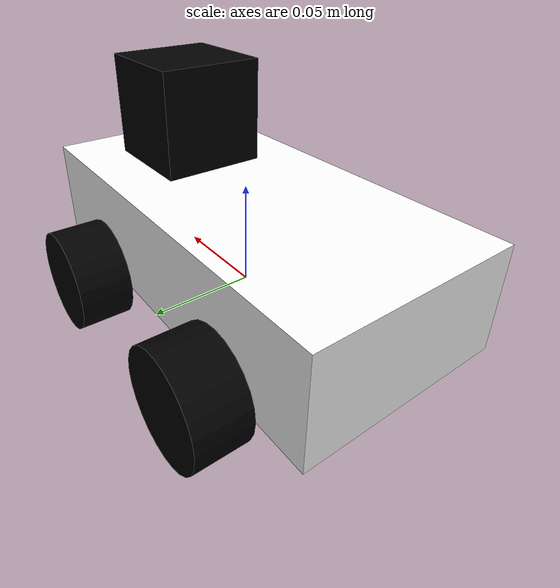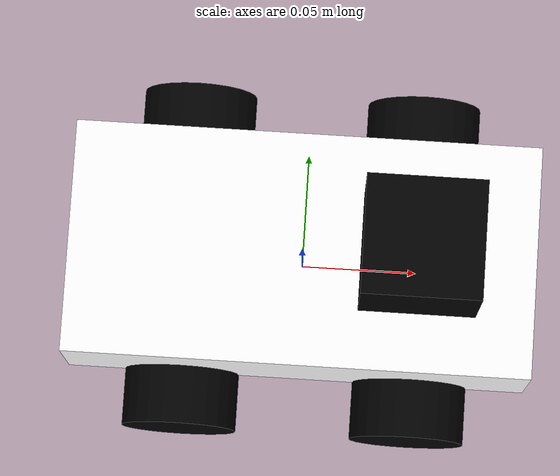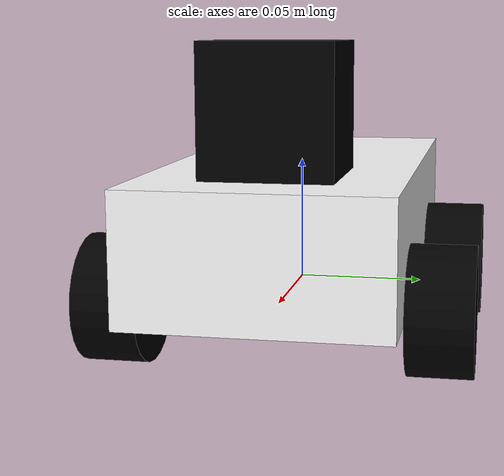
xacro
<?xml version="1.0"?>
<robot xmlns:xacro="http://www.ros.org/wiki/xacro" name="vechile">
<xacro:property name="body_x" value="0.2" />
<xacro:property name="body_y" value="0.1" />
<xacro:property name="body_z" value="0.05" />
<xacro:property name="wheel_r" value="0.025" />
<xacro:property name="wheel_l" value="0.025" />
<xacro:property name="body_mass" value="0.5" />
<xacro:property name="wheel_mass" value="0.05" />
<xacro:property name="pi" value="3.1415926"/>
<xacro:property name="camera_a" value="0.05"/>
<xacro:property name="camera_mass" value="0.05" />
<xacro:property name="camera_name" value="camera" />

<material name="black">
    <color rgba="0 0 0 1"/>
</material>

<material name="white">
    <color rgba="1 1 1 1"/>
</material>
<link name="base_link">
    <visual>
        <geometry>
            <box size="${body_x} ${body_y} ${body_z}"/>
        </geometry>
        <material name="white"/>
        <origin xyz="0 0 ${body_z/2}"/>
    </visual>
    <collision>
        <geometry>
            <box size="${body_x} ${body_y} ${body_z}"/>
        </geometry>
        <origin xyz="0 0 ${body_z/2}"/>
    </collision>
    <inertial>
        <mass value="${body_mass}" />
        <inertia ixx="${body_mass/12*(body_y*body_y+body_z*body_z)}"
        iyy="${body_mass/12*(body_x*body_x+body_z*body_z)}"
        izz="${body_mass/12*(body_y*body_y+body_x*body_x)}"
        ixy="0.0" ixz="0.0" iyz="0.0"/>
    </inertial>
</link>
<xacro:macro name="wheel" params="prefix">
    <link name="${prefix}_wheel">
        <visual>
            <geometry>
                <cylinder length="${wheel_l}" radius="${wheel_r}"/>
            </geometry>
            <material name="black"/>
            <origin xyz="0 0 0" rpy="${pi/2} 0 0" />
        </visual>
        <collision>
            <geometry>
                <cylinder length="${wheel_l}" radius="${wheel_r}"/>
            </geometry>
            <origin xyz="0 0 0" rpy="${pi/2} 0 0" />
        </collision>
        <inertial>
            <mass value="${wheel_mass}" />
            <inertia ixx="${wheel_mass/12*(3*wheel_r*wheel_r+wheel_l*wheel_l)}"
            iyy="${wheel_mass/12*(3*wheel_r*wheel_r+wheel_l*wheel_l)}"
            izz="${wheel_mass/2*(wheel_r*wheel_r)}"
            ixy="0.0" ixz="0.0" iyz="0.0"/>
        </inertial>
    </link>
    <transmission name="${prefix}_wheel_trans">
        <type>transmission_interface/SimpleTransmission</type>
        <actuator name="${prefix}_wheel_motor">
            <mechanicalReduction>1</mechanicalReduction>
        </actuator>
        <joint name="${prefix}_wheel_to_base">
            <hardwareInterface>VelocityJointInterface</hardwareInterface>
        </joint>
    </transmission>
    <gazebo reference="${prefix}_wheel">
      <mu1 value="200.0"/>
      <mu2 value="100.0"/>
      <kp value="10000000.0" />
      <kd value="1.0" />
      <material>Gazebo/Grey</material>
    </gazebo>

</xacro:macro>

<xacro:wheel prefix="left_front" />
<xacro:wheel prefix="left_rear" />
<xacro:wheel prefix="right_front" />
<xacro:wheel prefix="right_rear" />

<joint name="left_front_wheel_to_base" type="continuous">
    <parent link="base_link"/>
    <child link="left_front_wheel"/>
    <origin xyz="${body_x/4} ${body_y/2+wheel_l/2} 0" />
    <axis xyz="0 1 0"/>
</joint>
<joint name="left_rear_wheel_to_base" type="continuous">
    <parent link="base_link"/>
    <child link="left_rear_wheel"/>
    <origin xyz="${-body_x/4} ${body_y/2+wheel_l/2} 0"/>
    <axis xyz="0 1 0"/>
</joint>
<joint name="right_front_wheel_to_base" type="continuous">
    <parent link="base_link"/>
    <child link="right_front_wheel"/>
    <origin xyz="${body_x/4} ${-body_y/2-wheel_l/2} 0"/>
    <axis xyz="0 1 0"/>
</joint>
<joint name="right_rear_wheel_to_base" type="continuous">
    <parent link="base_link"/>
    <child link="right_rear_wheel"/>
    <origin xyz="${-body_x/4} ${-body_y/2-wheel_l/2} 0"/>
    <axis xyz="0 1 0"/>
</joint>
<link name="camera">
    <visual>
        <geometry>
            <box size="${camera_a} ${camera_a} ${camera_a}"/>
        </geometry>
        <material name="black"/>
        <origin xyz="0 0 ${camera_a/2}"/>
    </visual>
    <collision>
        <geometry>
            <box size="${camera_a} ${camera_a} ${camera_a}"/>
        </geometry>
        <origin xyz="0 0 ${camera_a/2}"/>
    </collision>
    <inertial>
        <mass value="${camera_mass}" />
        <inertia
        ixx="${camera_mass/12*(camera_a*camera_a+camera_a*camera_a)}"
        iyy="${camera_mass/12*(camera_a*camera_a+camera_a*camera_a)}"
        izz="${camera_mass/12*(camera_a*camera_a+camera_a*camera_a)}"
        ixy="0.0" ixz="0.0" iyz="0.0"/>
    </inertial>
</link>
<joint name="camera_base" type="fixed">
    <parent link="base_link"/>
    <child link="camera"/>
    <origin xyz="${body_x/4} 0 ${body_z}"/>
</joint>
    <gazebo reference="camera">
      <material>Gazebo/Grey</material>
    </gazebo>

<gazebo>
  <plugin name="skid_steer_drive_controller" filename="libgazebo_ros_skid_steer_drive.so">
    <updateRate>100.0</updateRate>
    <robotNamespace>/</robotNamespace>
    <leftFrontJoint>left_front_wheel_to_base</leftFrontJoint>
    <rightFrontJoint>right_front_wheel_to_base</rightFrontJoint>
    <leftRearJoint>left_rear_wheel_to_base</leftRearJoint>
    <rightRearJoint>right_rear_wheel_to_base</rightRearJoint>
    <wheelSeparation>${body_y+wheel_l}</wheelSeparation>
    <wheelDiameter>${2*wheel_r}</wheelDiameter>
    <robotBaseFrame>base_link</robotBaseFrame>
    <torque>20</torque>
    <topicName>cmd_vel</topicName>
    <broadcastTF>false</broadcastTF>
  </plugin>
</gazebo>

<gazebo reference="camera">
  <sensor name="camera" type="depth">
    <update_rate>20</update_rate>
    <camera>
      <horizontal_fov>1.047198</horizontal_fov>
      <image>
        <width>640</width>
        <height>480</height>
        <format>R8G8B8</format>
      </image>
      <clip>
        <near>0.05</near>
        <far>100.0</far>
      </clip>
    </camera>
    <plugin name="$camera_controller" filename="libgazebo_ros_openni_kinect.so">
      <baseline>0.2</baseline>
      <alwaysOn>true</alwaysOn>
      <updateRate>0.0   </updateRate>
      <cameraName>${camera_name}_ir</cameraName>
      <imageTopicName>/${camera_name}/rgb/image_raw</imageTopicName>
      <cameraInfoTopicName>/${camera_name}/rgb/camera_info</cameraInfoTopicName>
      <depthImageTopicName>/${camera_name}/depth_registered/image_raw</depthImageTopicName>
      <depthImageCameraInfoTopicName>/${camera_name}/depth_registered/camera_info</depthImageCameraInfoTopicName>
      <pointCloudTopicName>/${camera_name}/depth/points</pointCloudTopicName>
      <frameName>camera_f</frameName>
      <pointCloudCutoff>0.5</pointCloudCutoff>
      <pointCloudCutoffMax>100.0</pointCloudCutoffMax>
      <distortionK1>0.00000001</distortionK1>
      <distortionK2>0.00000001</distortionK2>
      <distortionK3>0.00000001</distortionK3>
      <distortionT1>0.00000001</distortionT1>
      <distortionT2>0.00000001</distortionT2>
      <CxPrime>0</CxPrime>
      <Cx>0</Cx>
      <Cy>0</Cy>
      <focalLength>0</focalLength>
      <hackBaseline>0</hackBaseline>
    </plugin>
  </sensor>
</gazebo>
</robot>
